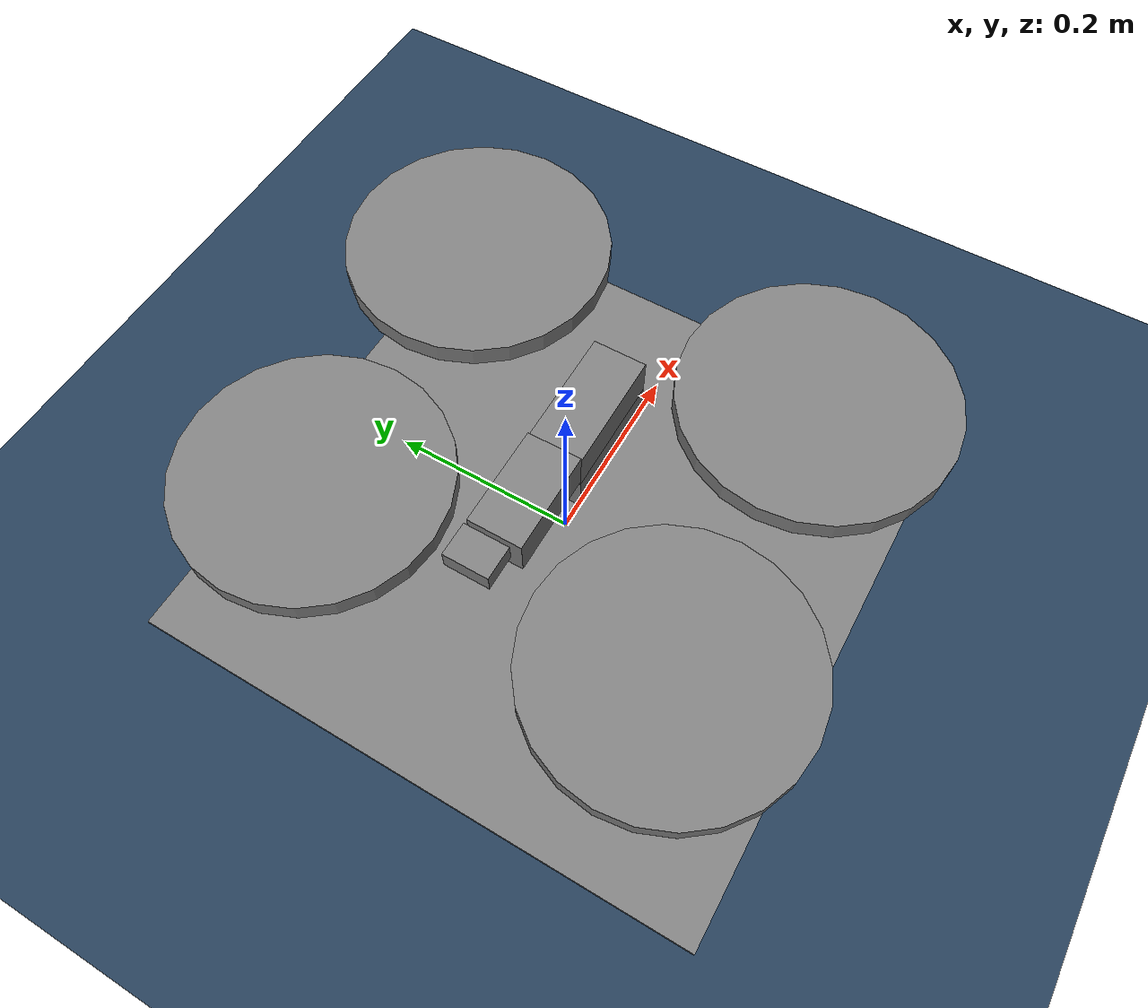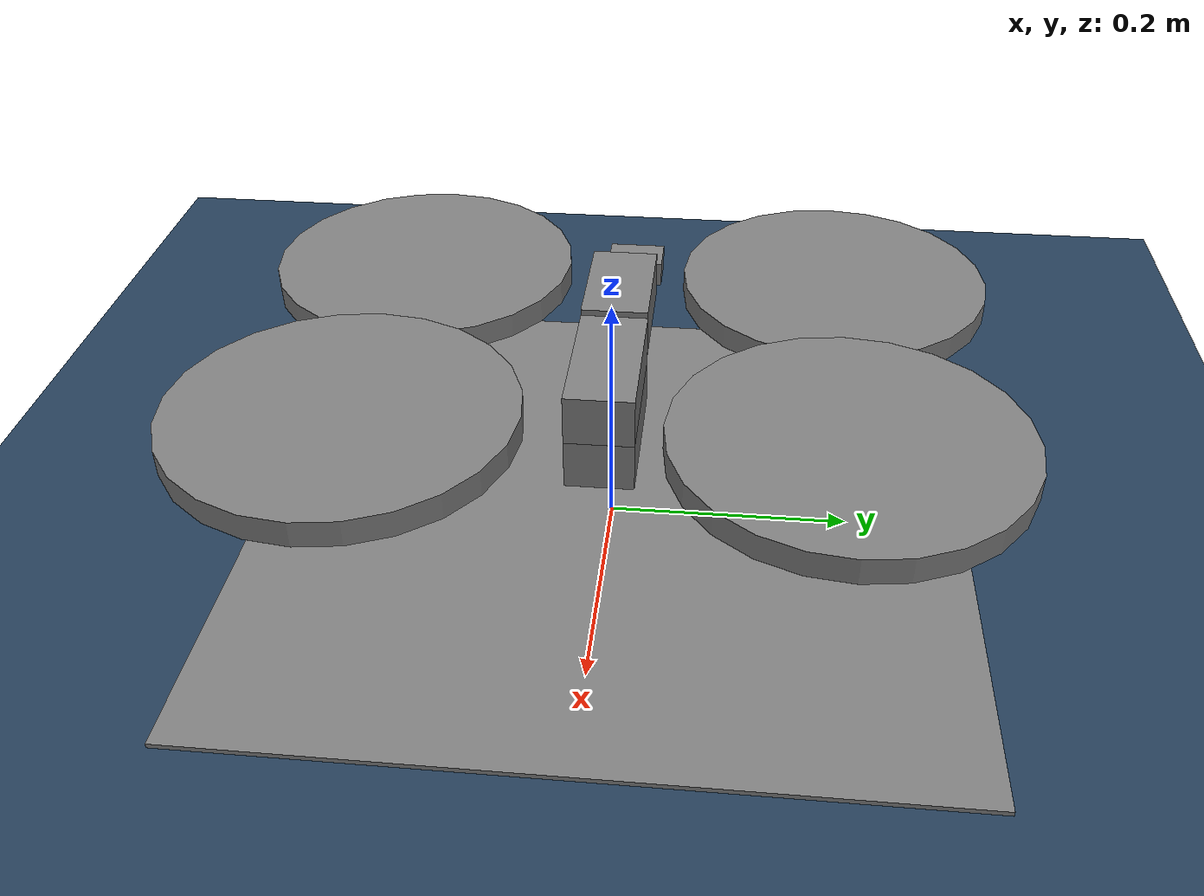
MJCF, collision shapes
<mujoco model="Skydio X2 scene">
  <include file="x2.xml"/>

  <statistic center="0 0 0.1" extent="0.6" meansize=".05"/>

  <visual>
    <headlight diffuse="0.6 0.6 0.6" ambient="0.3 0.3 0.3" specular="0 0 0"/>
    <rgba haze="0.15 0.25 0.35 1"/>
    <global azimuth="-20" elevation="-20" ellipsoidinertia="true"/>
  </visual>

  <asset>
    <texture type="skybox" builtin="gradient" rgb1="0.3 0.5 0.7" rgb2="0 0 0" width="512" height="3072"/>
    <texture type="2d" name="groundplane" builtin="checker" mark="edge" rgb1="0.2 0.3 0.4" rgb2="0.1 0.2 0.3"
      markrgb="0.8 0.8 0.8" width="300" height="300"/>
    <material name="groundplane" texture="groundplane" texuniform="true" texrepeat="5 5" reflectance="0.2"/>
    <texture type="2d" name="fiducial" builtin="checker" rgb1="1 1 1" rgb2="0 0 0" width="512" height="512"/>
    <material name="fiducial" texture="fiducial" texuniform="true" texrepeat="6 6"/>
  </asset>

  <worldbody>
    <light pos="0 0 1.5" dir="0 0 -1" directional="true"/>
    <body name="origin_target" pos="0 0 0"/>
    <camera name="outer_camera"      pos="-7 0 1" mode="targetbody" target="origin_target"/>
    <camera name="outer_camera_side" pos="0 -7 1" mode="targetbody" target="origin_target"/>
    <camera name="outer_camera_up" pos="0 0 11" mode="targetbody" target="origin_target"/>
    <geom name="floor" size="0 0 0.05" type="plane" material="groundplane"/>
    <geom name="fiducial_plate" type="box" pos="0 0 0.002" size="0.3 0.3 0.002" material="fiducial" contype="0" conaffinity="0"/>
  </worldbody>
</mujoco>

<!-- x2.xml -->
<mujoco model="Skydio X2">
  <compiler autolimits="true" assetdir="assets"/>

  <option timestep="0.01" density="1.225" viscosity="1.8e-5"/>

  <default>
    <default class="x2">
      <geom mass="0"/>
      <motor ctrlrange="0 13"/>
      <mesh scale="0.01 0.01 0.01"/>
      <default class="visual">
        <geom group="2" type="mesh" contype="0" conaffinity="0"/>
      </default>
      <default class="collision">
        <geom group="3" type="box"/>
        <default class="rotor">
          <geom type="cylinder" size=".13 .01"/>
        </default>
      </default>
      <site group="5"/>
    </default>
  </default>

  <asset>
    <texture type="2d" file="X2_lowpoly_texture_SpinningProps_1024.png"/>
    <material name="phong3SG" texture="X2_lowpoly_texture_SpinningProps_1024"/>
    <material name="invisible" rgba="0 0 0 0"/>

    <mesh class="x2" file="X2_lowpoly.obj"/>
  </asset>

  <worldbody>
    <light name="spotlight" mode="targetbodycom" target="x2" pos="0 -1 2"/>
    <body name="x2" pos="0 0 0.1" childclass="x2">
      <freejoint/>
      <body name="x2_camera_mount" pos="-0.15 0 0.05" childclass="visual">
        <joint name="x2_camera_tilt" type="hinge" axis="0 1 0" limited="true" range="-1.5708 0" damping="0.5"/>
        <inertial pos="0 0 0" mass="0.001" diaginertia="1e-6 1e-6 1e-6"/>
        <camera name="x2_camera" pos="0 0 0" xyaxes="0 1 0 0 0 1" fovy="70"/>
      </body>
      <site name="imu" pos="0 0 .02"/>
      <geom material="phong3SG" mesh="X2_lowpoly" class="visual" quat="0 0 1 1"/>
      <geom class="collision" size=".06 .027 .02" pos=".04 0 .02"/>
      <geom class="collision" size=".06 .027 .02" pos=".04 0 .06"/>
      <geom class="collision" size=".05 .027 .02" pos="-.07 0 .065"/>
      <geom class="collision" size=".023 .017 .01" pos="-.137 .008 .065" quat="1 0 0 1"/>
      <geom name="rotor1" class="rotor" pos="-.14 -.18 .05" mass=".25"/>
      <geom name="rotor2" class="rotor" pos="-.14 .18 .05" mass=".25"/>
      <geom name="rotor3" class="rotor" pos=".14 .18 .08" mass=".25"/>
      <geom name="rotor4" class="rotor" pos=".14 -.18 .08" mass=".25"/>
      <!-- Bright marker sphere for camera visibility (large for CNN) -->
      <geom size=".16 .04 .02" pos="0 0 0.02" type="box" mass=".325" class="visual" material="invisible"/>
      <site name="thrust1" pos="-.14 -.18 .05"/>
      <site name="thrust2" pos="-.14 .18 .05"/>
      <site name="thrust3" pos=".14 .18 .08"/>
      <site name="thrust4" pos=".14 -.18 .08"/>
    </body>
  </worldbody>

  <actuator>
    <motor class="x2" name="thrust1" site="thrust1" gear="0 0 1 0 0 -.0201"/>
    <motor class="x2" name="thrust2" site="thrust2" gear="0 0 1 0 0  .0201"/>
    <motor class="x2" name="thrust3" site="thrust3" gear="0 0 1 0 0 -.0201"/>
    <motor class="x2" name="thrust4" site="thrust4" gear="0 0 1 0 0  .0201"/>
    <position name="x2_camera_servo" joint="x2_camera_tilt" ctrlrange="-1.5708 0" kp="0.5"/>
  </actuator>

  <sensor>
    <framequat name="body_quat" objtype="site" objname="imu"/>
    <frameangvel name="body_angvel" objtype="site" objname="imu"/>
    <framelinacc name="body_linacc" objtype="site" objname="imu"/>
    <framelinvel name="body_linvel" objtype="site" objname="imu"/>

  </sensor>

  <keyframe>
    <key name="hover" qpos="0 0 .3 1 0 0 0" ctrl="3.2495625 3.2495625 3.2495625 3.2495625"/>
  </keyframe>
</mujoco>
